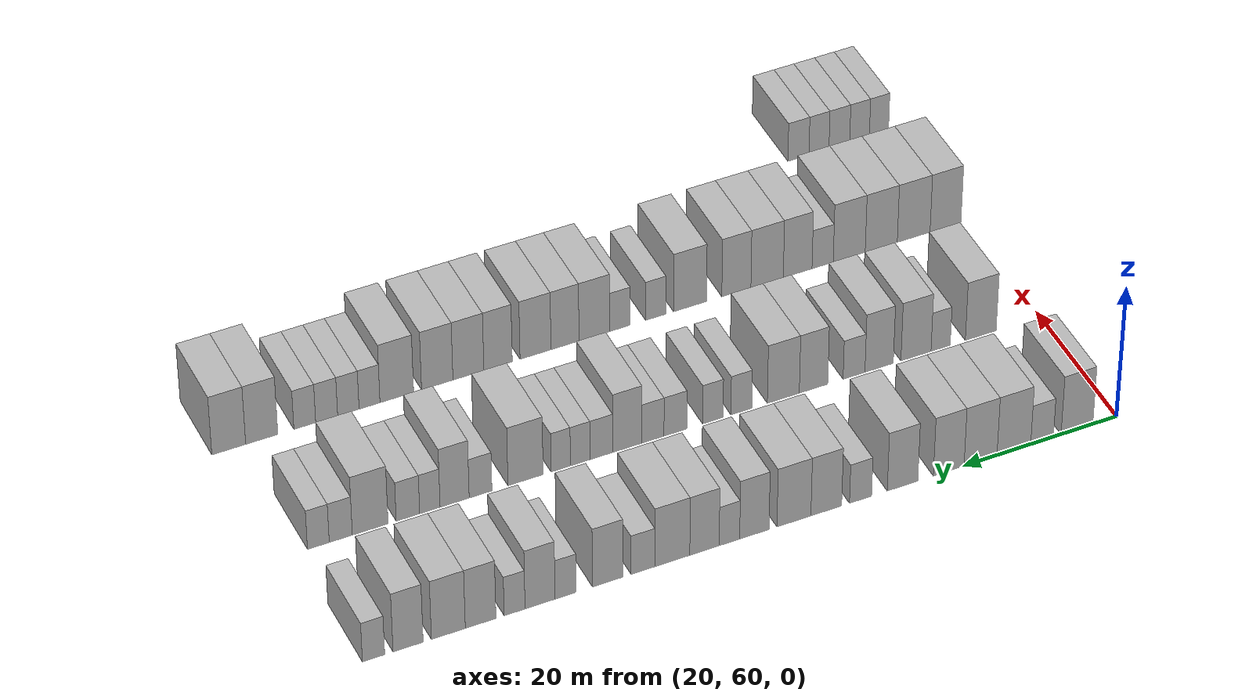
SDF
<sdf version="1.6">
 <world name="default">
  <model name="building_100">
   <static>1</static>
   <pose>25.0000 65.2234 0 0.000000 0.000000 0.000000</pose>
   <link name="link">
    <pose>0 0 4.50 0 0 0</pose>
    <collision name="collision"><geometry><box><size>10.0000 4.1479 9.0000</size></box></geometry></collision>
    <visual name="visual">
     <cast_shadows>0</cast_shadows>
     <geometry><box><size>10.0000 4.1479 9.0000</size></box></geometry>
     <material>
      <script>
       <uri>model://HANNAS_wall/materials/scripts</uri>
       <uri>model://HANNAS_wall/materials/textures</uri>
       <name>vrc/HANNAS_wall</name>
      </script>
     </material>
    </visual>
   </link>
  </model>
  <model name="building_101">
   <static>1</static>
   <pose>25.0000 69.7749 0 0.000000 0.000000 0.000000</pose>
   <link name="link">
    <pose>0 0 3.00 0 0 0</pose>
    <collision name="collision"><geometry><box><size>10.0000 2.9551 6.0000</size></box></geometry></collision>
    <visual name="visual">
     <cast_shadows>0</cast_shadows>
     <geometry><box><size>10.0000 2.9551 6.0000</size></box></geometry>
     <material>
      <script>
       <uri>model://HANNAS_wall/materials/scripts</uri>
       <uri>model://HANNAS_wall/materials/textures</uri>
       <name>vrc/HANNAS_wall</name>
      </script>
     </material>
    </visual>
   </link>
  </model>
  <model name="building_102">
   <static>1</static>
   <pose>25.0000 73.4389 0 0.000000 0.000000 0.000000</pose>
   <link name="link">
    <pose>0 0 4.50 0 0 0</pose>
    <collision name="collision"><geometry><box><size>10.0000 4.3728 9.0000</size></box></geometry></collision>
    <visual name="visual">
     <cast_shadows>0</cast_shadows>
     <geometry><box><size>10.0000 4.3728 9.0000</size></box></geometry>
     <material>
      <script>
       <uri>model://HANNAS_wall/materials/scripts</uri>
       <uri>model://HANNAS_wall/materials/textures</uri>
       <name>vrc/HANNAS_wall</name>
      </script>
     </material>
    </visual>
   </link>
  </model>
  <model name="building_103">
   <static>1</static>
   <pose>25.0000 77.7557 0 0.000000 0.000000 0.000000</pose>
   <link name="link">
    <pose>0 0 4.50 0 0 0</pose>
    <collision name="collision"><geometry><box><size>10.0000 4.2608 9.0000</size></box></geometry></collision>
    <visual name="visual">
     <cast_shadows>0</cast_shadows>
     <geometry><box><size>10.0000 4.2608 9.0000</size></box></geometry>
     <material>
      <script>
       <uri>model://HANNAS_wall/materials/scripts</uri>
       <uri>model://HANNAS_wall/materials/textures</uri>
       <name>vrc/HANNAS_wall</name>
      </script>
     </material>
    </visual>
   </link>
  </model>
  <model name="building_104">
   <static>1</static>
   <pose>25.0000 81.8620 0 0.000000 0.000000 0.000000</pose>
   <link name="link">
    <pose>0 0 4.50 0 0 0</pose>
    <collision name="collision"><geometry><box><size>10.0000 3.9519 9.0000</size></box></geometry></collision>
    <visual name="visual">
     <cast_shadows>0</cast_shadows>
     <geometry><box><size>10.0000 3.9519 9.0000</size></box></geometry>
     <material>
      <script>
       <uri>model://HANNAS_wall/materials/scripts</uri>
       <uri>model://HANNAS_wall/materials/textures</uri>
       <name>vrc/HANNAS_wall</name>
      </script>
     </material>
    </visual>
   </link>
  </model>
  <model name="building_105">
   <static>1</static>
   <pose>25.0000 87.7919 0 0.000000 0.000000 0.000000</pose>
   <link name="link">
    <pose>0 0 4.50 0 0 0</pose>
    <collision name="collision"><geometry><box><size>10.0000 3.9078 9.0000</size></box></geometry></collision>
    <visual name="visual">
     <cast_shadows>0</cast_shadows>
     <geometry><box><size>10.0000 3.9078 9.0000</size></box></geometry>
     <material>
      <script>
       <uri>model://HANNAS_wall/materials/scripts</uri>
       <uri>model://HANNAS_wall/materials/textures</uri>
       <name>vrc/HANNAS_wall</name>
      </script>
     </material>
    </visual>
   </link>
  </model>
  <model name="building_106">
   <static>1</static>
   <pose>25.0000 93.1498 0 0.000000 0.000000 0.000000</pose>
   <link name="link">
    <pose>0 0 3.00 0 0 0</pose>
    <collision name="collision"><geometry><box><size>10.0000 2.8081 6.0000</size></box></geometry></collision>
    <visual name="visual">
     <cast_shadows>0</cast_shadows>
     <geometry><box><size>10.0000 2.8081 6.0000</size></box></geometry>
     <material>
      <script>
       <uri>model://HANNAS_wall/materials/scripts</uri>
       <uri>model://HANNAS_wall/materials/textures</uri>
       <name>vrc/HANNAS_wall</name>
      </script>
     </material>
    </visual>
   </link>
  </model>
  <model name="building_107">
   <static>1</static>
   <pose>25.0000 97.5017 0 0.000000 0.000000 0.000000</pose>
   <link name="link">
    <pose>0 0 4.50 0 0 0</pose>
    <collision name="collision"><geometry><box><size>10.0000 3.8957 9.0000</size></box></geometry></collision>
    <visual name="visual">
     <cast_shadows>0</cast_shadows>
     <geometry><box><size>10.0000 3.8957 9.0000</size></box></geometry>
     <material>
      <script>
       <uri>model://HANNAS_wall/materials/scripts</uri>
       <uri>model://HANNAS_wall/materials/textures</uri>
       <name>vrc/HANNAS_wall</name>
      </script>
     </material>
    </visual>
   </link>
  </model>
  <model name="building_108">
   <static>1</static>
   <pose>25.0000 101.5900 0 0.000000 0.000000 0.000000</pose>
   <link name="link">
    <pose>0 0 4.50 0 0 0</pose>
    <collision name="collision"><geometry><box><size>10.0000 4.2809 9.0000</size></box></geometry></collision>
    <visual name="visual">
     <cast_shadows>0</cast_shadows>
     <geometry><box><size>10.0000 4.2809 9.0000</size></box></geometry>
     <material>
      <script>
       <uri>model://HANNAS_wall/materials/scripts</uri>
       <uri>model://HANNAS_wall/materials/textures</uri>
       <name>vrc/HANNAS_wall</name>
      </script>
     </material>
    </visual>
   </link>
  </model>
  <model name="building_109">
   <static>1</static>
   <pose>25.0000 106.5725 0 0.000000 0.000000 0.000000</pose>
   <link name="link">
    <pose>0 0 4.50 0 0 0</pose>
    <collision name="collision"><geometry><box><size>10.0000 3.6840 9.0000</size></box></geometry></collision>
    <visual name="visual">
     <cast_shadows>0</cast_shadows>
     <geometry><box><size>10.0000 3.6840 9.0000</size></box></geometry>
     <material>
      <script>
       <uri>model://HANNAS_wall/materials/scripts</uri>
       <uri>model://HANNAS_wall/materials/textures</uri>
       <name>vrc/HANNAS_wall</name>
      </script>
     </material>
    </visual>
   </link>
  </model>
  <model name="building_110">
   <static>1</static>
   <pose>25.0000 109.6948 0 0.000000 0.000000 0.000000</pose>
   <link name="link">
    <pose>0 0 3.00 0 0 0</pose>
    <collision name="collision"><geometry><box><size>10.0000 2.5607 6.0000</size></box></geometry></collision>
    <visual name="visual">
     <cast_shadows>0</cast_shadows>
     <geometry><box><size>10.0000 2.5607 6.0000</size></box></geometry>
     <material>
      <script>
       <uri>model://HANNAS_wall/materials/scripts</uri>
       <uri>model://HANNAS_wall/materials/textures</uri>
       <name>vrc/HANNAS_wall</name>
      </script>
     </material>
    </visual>
   </link>
  </model>
  <model name="building_111">
   <static>1</static>
   <pose>25.0000 112.8105 0 0.000000 0.000000 0.000000</pose>
   <link name="link">
    <pose>0 0 4.50 0 0 0</pose>
    <collision name="collision"><geometry><box><size>10.0000 3.6707 9.0000</size></box></geometry></collision>
    <visual name="visual">
     <cast_shadows>0</cast_shadows>
     <geometry><box><size>10.0000 3.6707 9.0000</size></box></geometry>
     <material>
      <script>
       <uri>model://HANNAS_wall/materials/scripts</uri>
       <uri>model://HANNAS_wall/materials/textures</uri>
       <name>vrc/HANNAS_wall</name>
      </script>
     </material>
    </visual>
   </link>
  </model>
  <model name="building_112">
   <static>1</static>
   <pose>25.0000 116.8172 0 0.000000 0.000000 0.000000</pose>
   <link name="link">
    <pose>0 0 4.50 0 0 0</pose>
    <collision name="collision"><geometry><box><size>10.0000 4.3426 9.0000</size></box></geometry></collision>
    <visual name="visual">
     <cast_shadows>0</cast_shadows>
     <geometry><box><size>10.0000 4.3426 9.0000</size></box></geometry>
     <material>
      <script>
       <uri>model://HANNAS_wall/materials/scripts</uri>
       <uri>model://HANNAS_wall/materials/textures</uri>
       <name>vrc/HANNAS_wall</name>
      </script>
     </material>
    </visual>
   </link>
  </model>
  <model name="building_113">
   <static>1</static>
   <pose>25.0000 120.4595 0 0.000000 0.000000 0.000000</pose>
   <link name="link">
    <pose>0 0 3.00 0 0 0</pose>
    <collision name="collision"><geometry><box><size>10.0000 2.9421 6.0000</size></box></geometry></collision>
    <visual name="visual">
     <cast_shadows>0</cast_shadows>
     <geometry><box><size>10.0000 2.9421 6.0000</size></box></geometry>
     <material>
      <script>
       <uri>model://HANNAS_wall/materials/scripts</uri>
       <uri>model://HANNAS_wall/materials/textures</uri>
       <name>vrc/HANNAS_wall</name>
      </script>
     </material>
    </visual>
   </link>
  </model>
  <model name="building_114">
   <static>1</static>
   <pose>25.0000 124.8111 0 0.000000 0.000000 0.000000</pose>
   <link name="link">
    <pose>0 0 4.50 0 0 0</pose>
    <collision name="collision"><geometry><box><size>10.0000 3.7609 9.0000</size></box></geometry></collision>
    <visual name="visual">
     <cast_shadows>0</cast_shadows>
     <geometry><box><size>10.0000 3.7609 9.0000</size></box></geometry>
     <material>
      <script>
       <uri>model://HANNAS_wall/materials/scripts</uri>
       <uri>model://HANNAS_wall/materials/textures</uri>
       <name>vrc/HANNAS_wall</name>
      </script>
     </material>
    </visual>
   </link>
  </model>
  <model name="building_115">
   <static>1</static>
   <pose>25.0000 129.9902 0 0.000000 0.000000 0.000000</pose>
   <link name="link">
    <pose>0 0 3.00 0 0 0</pose>
    <collision name="collision"><geometry><box><size>10.0000 2.5973 6.0000</size></box></geometry></collision>
    <visual name="visual">
     <cast_shadows>0</cast_shadows>
     <geometry><box><size>10.0000 2.5973 6.0000</size></box></geometry>
     <material>
      <script>
       <uri>model://HANNAS_wall/materials/scripts</uri>
       <uri>model://HANNAS_wall/materials/textures</uri>
       <name>vrc/HANNAS_wall</name>
      </script>
     </material>
    </visual>
   </link>
  </model>
  <model name="building_116">
   <static>1</static>
   <pose>25.0000 133.1242 0 0.000000 0.000000 0.000000</pose>
   <link name="link">
    <pose>0 0 4.50 0 0 0</pose>
    <collision name="collision"><geometry><box><size>10.0000 3.6707 9.0000</size></box></geometry></collision>
    <visual name="visual">
     <cast_shadows>0</cast_shadows>
     <geometry><box><size>10.0000 3.6707 9.0000</size></box></geometry>
     <material>
      <script>
       <uri>model://HANNAS_wall/materials/scripts</uri>
       <uri>model://HANNAS_wall/materials/textures</uri>
       <name>vrc/HANNAS_wall</name>
      </script>
     </material>
    </visual>
   </link>
  </model>
  <model name="building_117">
   <static>1</static>
   <pose>25.0000 136.2313 0 0.000000 0.000000 0.000000</pose>
   <link name="link">
    <pose>0 0 3.00 0 0 0</pose>
    <collision name="collision"><geometry><box><size>10.0000 2.5433 6.0000</size></box></geometry></collision>
    <visual name="visual">
     <cast_shadows>0</cast_shadows>
     <geometry><box><size>10.0000 2.5433 6.0000</size></box></geometry>
     <material>
      <script>
       <uri>model://HANNAS_wall/materials/scripts</uri>
       <uri>model://HANNAS_wall/materials/textures</uri>
       <name>vrc/HANNAS_wall</name>
      </script>
     </material>
    </visual>
   </link>
  </model>
  <model name="building_118">
   <static>1</static>
   <pose>25.0000 140.3621 0 0.000000 0.000000 0.000000</pose>
   <link name="link">
    <pose>0 0 4.50 0 0 0</pose>
    <collision name="collision"><geometry><box><size>10.0000 3.7183 9.0000</size></box></geometry></collision>
    <visual name="visual">
     <cast_shadows>0</cast_shadows>
     <geometry><box><size>10.0000 3.7183 9.0000</size></box></geometry>
     <material>
      <script>
       <uri>model://HANNAS_wall/materials/scripts</uri>
       <uri>model://HANNAS_wall/materials/textures</uri>
       <name>vrc/HANNAS_wall</name>
      </script>
     </material>
    </visual>
   </link>
  </model>
  <model name="building_119">
   <static>1</static>
   <pose>25.0000 144.2702 0 0.000000 0.000000 0.000000</pose>
   <link name="link">
    <pose>0 0 4.50 0 0 0</pose>
    <collision name="collision"><geometry><box><size>10.0000 4.0978 9.0000</size></box></geometry></collision>
    <visual name="visual">
     <cast_shadows>0</cast_shadows>
     <geometry><box><size>10.0000 4.0978 9.0000</size></box></geometry>
     <material>
      <script>
       <uri>model://HANNAS_wall/materials/scripts</uri>
       <uri>model://HANNAS_wall/materials/textures</uri>
       <name>vrc/HANNAS_wall</name>
      </script>
     </material>
    </visual>
   </link>
  </model>
  <model name="building_120">
   <static>1</static>
   <pose>25.0000 149.1293 0 0.000000 0.000000 0.000000</pose>
   <link name="link">
    <pose>0 0 4.50 0 0 0</pose>
    <collision name="collision"><geometry><box><size>10.0000 3.6205 9.0000</size></box></geometry></collision>
    <visual name="visual">
     <cast_shadows>0</cast_shadows>
     <geometry><box><size>10.0000 3.6205 9.0000</size></box></geometry>
     <material>
      <script>
       <uri>model://HANNAS_wall/materials/scripts</uri>
       <uri>model://HANNAS_wall/materials/textures</uri>
       <name>vrc/HANNAS_wall</name>
      </script>
     </material>
    </visual>
   </link>
  </model>
  <model name="building_121">
   <static>1</static>
   <pose>25.0000 153.2740 0 0.000000 0.000000 0.000000</pose>
   <link name="link">
    <pose>0 0 3.00 0 0 0</pose>
    <collision name="collision"><geometry><box><size>10.0000 2.6689 6.0000</size></box></geometry></collision>
    <visual name="visual">
     <cast_shadows>0</cast_shadows>
     <geometry><box><size>10.0000 2.6689 6.0000</size></box></geometry>
     <material>
      <script>
       <uri>model://HANNAS_wall/materials/scripts</uri>
       <uri>model://HANNAS_wall/materials/textures</uri>
       <name>vrc/HANNAS_wall</name>
      </script>
     </material>
    </visual>
   </link>
  </model>
  <model name="building_274">
   <static>1</static>
   <pose>44.0000 67.8779 0 0.000000 0.000000 0.000000</pose>
   <link name="link">
    <pose>0 0 4.50 0 0 0</pose>
    <collision name="collision"><geometry><box><size>10.0000 4.0753 9.0000</size></box></geometry></collision>
    <visual name="visual">
     <cast_shadows>0</cast_shadows>
     <geometry><box><size>10.0000 4.0753 9.0000</size></box></geometry>
     <material>
      <script>
       <uri>model://HANNAS_wall/materials/scripts</uri>
       <uri>model://HANNAS_wall/materials/textures</uri>
       <name>vrc/HANNAS_wall</name>
      </script>
     </material>
    </visual>
   </link>
  </model>
  <model name="building_275">
   <static>1</static>
   <pose>44.0000 73.1790 0 0.000000 0.000000 0.000000</pose>
   <link name="link">
    <pose>0 0 3.00 0 0 0</pose>
    <collision name="collision"><geometry><box><size>10.0000 2.5270 6.0000</size></box></geometry></collision>
    <visual name="visual">
     <cast_shadows>0</cast_shadows>
     <geometry><box><size>10.0000 2.5270 6.0000</size></box></geometry>
     <material>
      <script>
       <uri>model://HANNAS_wall/materials/scripts</uri>
       <uri>model://HANNAS_wall/materials/textures</uri>
       <name>vrc/HANNAS_wall</name>
      </script>
     </material>
    </visual>
   </link>
  </model>
  <model name="building_276">
   <static>1</static>
   <pose>44.0000 76.4211 0 0.000000 0.000000 0.000000</pose>
   <link name="link">
    <pose>0 0 4.50 0 0 0</pose>
    <collision name="collision"><geometry><box><size>10.0000 3.9571 9.0000</size></box></geometry></collision>
    <visual name="visual">
     <cast_shadows>0</cast_shadows>
     <geometry><box><size>10.0000 3.9571 9.0000</size></box></geometry>
     <material>
      <script>
       <uri>model://HANNAS_wall/materials/scripts</uri>
       <uri>model://HANNAS_wall/materials/textures</uri>
       <name>vrc/HANNAS_wall</name>
      </script>
     </material>
    </visual>
   </link>
  </model>
  <model name="building_277">
   <static>1</static>
   <pose>44.0000 81.2521 0 0.000000 0.000000 0.000000</pose>
   <link name="link">
    <pose>0 0 4.50 0 0 0</pose>
    <collision name="collision"><geometry><box><size>10.0000 3.7050 9.0000</size></box></geometry></collision>
    <visual name="visual">
     <cast_shadows>0</cast_shadows>
     <geometry><box><size>10.0000 3.7050 9.0000</size></box></geometry>
     <material>
      <script>
       <uri>model://HANNAS_wall/materials/scripts</uri>
       <uri>model://HANNAS_wall/materials/textures</uri>
       <name>vrc/HANNAS_wall</name>
      </script>
     </material>
    </visual>
   </link>
  </model>
  <model name="building_278">
   <static>1</static>
   <pose>44.0000 84.5286 0 0.000000 0.000000 0.000000</pose>
   <link name="link">
    <pose>0 0 3.00 0 0 0</pose>
    <collision name="collision"><geometry><box><size>10.0000 2.8479 6.0000</size></box></geometry></collision>
    <visual name="visual">
     <cast_shadows>0</cast_shadows>
     <geometry><box><size>10.0000 2.8479 6.0000</size></box></geometry>
     <material>
      <script>
       <uri>model://HANNAS_wall/materials/scripts</uri>
       <uri>model://HANNAS_wall/materials/textures</uri>
       <name>vrc/HANNAS_wall</name>
      </script>
     </material>
    </visual>
   </link>
  </model>
  <model name="building_279">
   <static>1</static>
   <pose>44.0000 89.7949 0 0.000000 0.000000 0.000000</pose>
   <link name="link">
    <pose>0 0 4.50 0 0 0</pose>
    <collision name="collision"><geometry><box><size>10.0000 3.6847 9.0000</size></box></geometry></collision>
    <visual name="visual">
     <cast_shadows>0</cast_shadows>
     <geometry><box><size>10.0000 3.6847 9.0000</size></box></geometry>
     <material>
      <script>
       <uri>model://HANNAS_wall/materials/scripts</uri>
       <uri>model://HANNAS_wall/materials/textures</uri>
       <name>vrc/HANNAS_wall</name>
      </script>
     </material>
    </visual>
   </link>
  </model>
  <model name="building_280">
   <static>1</static>
   <pose>44.0000 93.7011 0 0.000000 0.000000 0.000000</pose>
   <link name="link">
    <pose>0 0 4.50 0 0 0</pose>
    <collision name="collision"><geometry><box><size>10.0000 4.1276 9.0000</size></box></geometry></collision>
    <visual name="visual">
     <cast_shadows>0</cast_shadows>
     <geometry><box><size>10.0000 4.1276 9.0000</size></box></geometry>
     <material>
      <script>
       <uri>model://HANNAS_wall/materials/scripts</uri>
       <uri>model://HANNAS_wall/materials/textures</uri>
       <name>vrc/HANNAS_wall</name>
      </script>
     </material>
    </visual>
   </link>
  </model>
  <model name="building_281">
   <static>1</static>
   <pose>44.0000 99.1080 0 0.000000 0.000000 0.000000</pose>
   <link name="link">
    <pose>0 0 3.00 0 0 0</pose>
    <collision name="collision"><geometry><box><size>10.0000 2.6862 6.0000</size></box></geometry></collision>
    <visual name="visual">
     <cast_shadows>0</cast_shadows>
     <geometry><box><size>10.0000 2.6862 6.0000</size></box></geometry>
     <material>
      <script>
       <uri>model://HANNAS_wall/materials/scripts</uri>
       <uri>model://HANNAS_wall/materials/textures</uri>
       <name>vrc/HANNAS_wall</name>
      </script>
     </material>
    </visual>
   </link>
  </model>
  <model name="building_282">
   <static>1</static>
   <pose>44.0000 102.7680 0 0.000000 0.000000 0.000000</pose>
   <link name="link">
    <pose>0 0 3.00 0 0 0</pose>
    <collision name="collision"><geometry><box><size>10.0000 2.6338 6.0000</size></box></geometry></collision>
    <visual name="visual">
     <cast_shadows>0</cast_shadows>
     <geometry><box><size>10.0000 2.6338 6.0000</size></box></geometry>
     <material>
      <script>
       <uri>model://HANNAS_wall/materials/scripts</uri>
       <uri>model://HANNAS_wall/materials/textures</uri>
       <name>vrc/HANNAS_wall</name>
      </script>
     </material>
    </visual>
   </link>
  </model>
  <model name="building_283">
   <static>1</static>
   <pose>44.0000 107.5436 0 0.000000 0.000000 0.000000</pose>
   <link name="link">
    <pose>0 0 3.00 0 0 0</pose>
    <collision name="collision"><geometry><box><size>10.0000 2.9174 6.0000</size></box></geometry></collision>
    <visual name="visual">
     <cast_shadows>0</cast_shadows>
     <geometry><box><size>10.0000 2.9174 6.0000</size></box></geometry>
     <material>
      <script>
       <uri>model://HANNAS_wall/materials/scripts</uri>
       <uri>model://HANNAS_wall/materials/textures</uri>
       <name>vrc/HANNAS_wall</name>
      </script>
     </material>
    </visual>
   </link>
  </model>
  <model name="building_284">
   <static>1</static>
   <pose>44.0000 110.3958 0 0.000000 0.000000 0.000000</pose>
   <link name="link">
    <pose>0 0 3.00 0 0 0</pose>
    <collision name="collision"><geometry><box><size>10.0000 2.7870 6.0000</size></box></geometry></collision>
    <visual name="visual">
     <cast_shadows>0</cast_shadows>
     <geometry><box><size>10.0000 2.7870 6.0000</size></box></geometry>
     <material>
      <script>
       <uri>model://HANNAS_wall/materials/scripts</uri>
       <uri>model://HANNAS_wall/materials/textures</uri>
       <name>vrc/HANNAS_wall</name>
      </script>
     </material>
    </visual>
   </link>
  </model>
  <model name="building_285">
   <static>1</static>
   <pose>44.0000 113.6389 0 0.000000 0.000000 0.000000</pose>
   <link name="link">
    <pose>0 0 4.50 0 0 0</pose>
    <collision name="collision"><geometry><box><size>10.0000 3.6992 9.0000</size></box></geometry></collision>
    <visual name="visual">
     <cast_shadows>0</cast_shadows>
     <geometry><box><size>10.0000 3.6992 9.0000</size></box></geometry>
     <material>
      <script>
       <uri>model://HANNAS_wall/materials/scripts</uri>
       <uri>model://HANNAS_wall/materials/textures</uri>
       <name>vrc/HANNAS_wall</name>
      </script>
     </material>
    </visual>
   </link>
  </model>
  <model name="building_286">
   <static>1</static>
   <pose>44.0000 116.9283 0 0.000000 0.000000 0.000000</pose>
   <link name="link">
    <pose>0 0 3.00 0 0 0</pose>
    <collision name="collision"><geometry><box><size>10.0000 2.8796 6.0000</size></box></geometry></collision>
    <visual name="visual">
     <cast_shadows>0</cast_shadows>
     <geometry><box><size>10.0000 2.8796 6.0000</size></box></geometry>
     <material>
      <script>
       <uri>model://HANNAS_wall/materials/scripts</uri>
       <uri>model://HANNAS_wall/materials/textures</uri>
       <name>vrc/HANNAS_wall</name>
      </script>
     </material>
    </visual>
   </link>
  </model>
  <model name="building_287">
   <static>1</static>
   <pose>44.0000 119.6041 0 0.000000 0.000000 0.000000</pose>
   <link name="link">
    <pose>0 0 3.00 0 0 0</pose>
    <collision name="collision"><geometry><box><size>10.0000 2.4720 6.0000</size></box></geometry></collision>
    <visual name="visual">
     <cast_shadows>0</cast_shadows>
     <geometry><box><size>10.0000 2.4720 6.0000</size></box></geometry>
     <material>
      <script>
       <uri>model://HANNAS_wall/materials/scripts</uri>
       <uri>model://HANNAS_wall/materials/textures</uri>
       <name>vrc/HANNAS_wall</name>
      </script>
     </material>
    </visual>
   </link>
  </model>
  <model name="building_288">
   <static>1</static>
   <pose>44.0000 122.0559 0 0.000000 0.000000 0.000000</pose>
   <link name="link">
    <pose>0 0 3.00 0 0 0</pose>
    <collision name="collision"><geometry><box><size>10.0000 2.4317 6.0000</size></box></geometry></collision>
    <visual name="visual">
     <cast_shadows>0</cast_shadows>
     <geometry><box><size>10.0000 2.4317 6.0000</size></box></geometry>
     <material>
      <script>
       <uri>model://HANNAS_wall/materials/scripts</uri>
       <uri>model://HANNAS_wall/materials/textures</uri>
       <name>vrc/HANNAS_wall</name>
      </script>
     </material>
    </visual>
   </link>
  </model>
  <model name="building_289">
   <static>1</static>
   <pose>44.0000 126.4707 0 0.000000 0.000000 0.000000</pose>
   <link name="link">
    <pose>0 0 4.50 0 0 0</pose>
    <collision name="collision"><geometry><box><size>10.0000 4.3979 9.0000</size></box></geometry></collision>
    <visual name="visual">
     <cast_shadows>0</cast_shadows>
     <geometry><box><size>10.0000 4.3979 9.0000</size></box></geometry>
     <material>
      <script>
       <uri>model://HANNAS_wall/materials/scripts</uri>
       <uri>model://HANNAS_wall/materials/textures</uri>
       <name>vrc/HANNAS_wall</name>
      </script>
     </material>
    </visual>
   </link>
  </model>
  <model name="building_290">
   <static>1</static>
   <pose>44.0000 132.0843 0 0.000000 0.000000 0.000000</pose>
   <link name="link">
    <pose>0 0 3.00 0 0 0</pose>
    <collision name="collision"><geometry><box><size>10.0000 2.8293 6.0000</size></box></geometry></collision>
    <visual name="visual">
     <cast_shadows>0</cast_shadows>
     <geometry><box><size>10.0000 2.8293 6.0000</size></box></geometry>
     <material>
      <script>
       <uri>model://HANNAS_wall/materials/scripts</uri>
       <uri>model://HANNAS_wall/materials/textures</uri>
       <name>vrc/HANNAS_wall</name>
      </script>
     </material>
    </visual>
   </link>
  </model>
  <model name="building_291">
   <static>1</static>
   <pose>44.0000 135.3038 0 0.000000 0.000000 0.000000</pose>
   <link name="link">
    <pose>0 0 4.50 0 0 0</pose>
    <collision name="collision"><geometry><box><size>10.0000 3.6096 9.0000</size></box></geometry></collision>
    <visual name="visual">
     <cast_shadows>0</cast_shadows>
     <geometry><box><size>10.0000 3.6096 9.0000</size></box></geometry>
     <material>
      <script>
       <uri>model://HANNAS_wall/materials/scripts</uri>
       <uri>model://HANNAS_wall/materials/textures</uri>
       <name>vrc/HANNAS_wall</name>
      </script>
     </material>
    </visual>
   </link>
  </model>
  <model name="building_292">
   <static>1</static>
   <pose>44.0000 138.3675 0 0.000000 0.000000 0.000000</pose>
   <link name="link">
    <pose>0 0 3.00 0 0 0</pose>
    <collision name="collision"><geometry><box><size>10.0000 2.5178 6.0000</size></box></geometry></collision>
    <visual name="visual">
     <cast_shadows>0</cast_shadows>
     <geometry><box><size>10.0000 2.5178 6.0000</size></box></geometry>
     <material>
      <script>
       <uri>model://HANNAS_wall/materials/scripts</uri>
       <uri>model://HANNAS_wall/materials/textures</uri>
       <name>vrc/HANNAS_wall</name>
      </script>
     </material>
    </visual>
   </link>
  </model>
  <model name="building_293">
   <static>1</static>
   <pose>44.0000 141.0762 0 0.000000 0.000000 0.000000</pose>
   <link name="link">
    <pose>0 0 3.00 0 0 0</pose>
    <collision name="collision"><geometry><box><size>10.0000 2.8996 6.0000</size></box></geometry></collision>
    <visual name="visual">
     <cast_shadows>0</cast_shadows>
     <geometry><box><size>10.0000 2.8996 6.0000</size></box></geometry>
     <material>
      <script>
       <uri>model://HANNAS_wall/materials/scripts</uri>
       <uri>model://HANNAS_wall/materials/textures</uri>
       <name>vrc/HANNAS_wall</name>
      </script>
     </material>
    </visual>
   </link>
  </model>
  <model name="building_294">
   <static>1</static>
   <pose>44.0000 145.7191 0 0.000000 0.000000 0.000000</pose>
   <link name="link">
    <pose>0 0 4.50 0 0 0</pose>
    <collision name="collision"><geometry><box><size>10.0000 4.3862 9.0000</size></box></geometry></collision>
    <visual name="visual">
     <cast_shadows>0</cast_shadows>
     <geometry><box><size>10.0000 4.3862 9.0000</size></box></geometry>
     <material>
      <script>
       <uri>model://HANNAS_wall/materials/scripts</uri>
       <uri>model://HANNAS_wall/materials/textures</uri>
       <name>vrc/HANNAS_wall</name>
      </script>
     </material>
    </visual>
   </link>
  </model>
  <model name="building_295">
   <static>1</static>
   <pose>44.0000 149.3250 0 0.000000 0.000000 0.000000</pose>
   <link name="link">
    <pose>0 0 3.00 0 0 0</pose>
    <collision name="collision"><geometry><box><size>10.0000 2.8255 6.0000</size></box></geometry></collision>
    <visual name="visual">
     <cast_shadows>0</cast_shadows>
     <geometry><box><size>10.0000 2.8255 6.0000</size></box></geometry>
     <material>
      <script>
       <uri>model://HANNAS_wall/materials/scripts</uri>
       <uri>model://HANNAS_wall/materials/textures</uri>
       <name>vrc/HANNAS_wall</name>
      </script>
     </material>
    </visual>
   </link>
  </model>
  <model name="building_296">
   <static>1</static>
   <pose>44.0000 152.0658 0 0.000000 0.000000 0.000000</pose>
   <link name="link">
    <pose>0 0 3.00 0 0 0</pose>
    <collision name="collision"><geometry><box><size>10.0000 2.6561 6.0000</size></box></geometry></collision>
    <visual name="visual">
     <cast_shadows>0</cast_shadows>
     <geometry><box><size>10.0000 2.6561 6.0000</size></box></geometry>
     <material>
      <script>
       <uri>model://HANNAS_wall/materials/scripts</uri>
       <uri>model://HANNAS_wall/materials/textures</uri>
       <name>vrc/HANNAS_wall</name>
      </script>
     </material>
    </visual>
   </link>
  </model>
  <model name="building_447">
   <static>1</static>
   <pose>63.0000 62.7924 0 0.000000 0.000000 0.000000</pose>
   <link name="link">
    <pose>0 0 4.50 0 0 0</pose>
    <collision name="collision"><geometry><box><size>10.0000 4.1643 9.0000</size></box></geometry></collision>
    <visual name="visual">
     <cast_shadows>0</cast_shadows>
     <geometry><box><size>10.0000 4.1643 9.0000</size></box></geometry>
     <material>
      <script>
       <uri>model://HANNAS_wall/materials/scripts</uri>
       <uri>model://HANNAS_wall/materials/textures</uri>
       <name>vrc/HANNAS_wall</name>
      </script>
     </material>
    </visual>
   </link>
  </model>
  <model name="building_448">
   <static>1</static>
   <pose>63.0000 67.0804 0 0.000000 0.000000 0.000000</pose>
   <link name="link">
    <pose>0 0 4.50 0 0 0</pose>
    <collision name="collision"><geometry><box><size>10.0000 4.4115 9.0000</size></box></geometry></collision>
    <visual name="visual">
     <cast_shadows>0</cast_shadows>
     <geometry><box><size>10.0000 4.4115 9.0000</size></box></geometry>
     <material>
      <script>
       <uri>model://HANNAS_wall/materials/scripts</uri>
       <uri>model://HANNAS_wall/materials/textures</uri>
       <name>vrc/HANNAS_wall</name>
      </script>
     </material>
    </visual>
   </link>
  </model>
  <model name="building_449">
   <static>1</static>
   <pose>63.0000 71.4343 0 0.000000 0.000000 0.000000</pose>
   <link name="link">
    <pose>0 0 4.50 0 0 0</pose>
    <collision name="collision"><geometry><box><size>10.0000 4.2965 9.0000</size></box></geometry></collision>
    <visual name="visual">
     <cast_shadows>0</cast_shadows>
     <geometry><box><size>10.0000 4.2965 9.0000</size></box></geometry>
     <material>
      <script>
       <uri>model://HANNAS_wall/materials/scripts</uri>
       <uri>model://HANNAS_wall/materials/textures</uri>
       <name>vrc/HANNAS_wall</name>
      </script>
     </material>
    </visual>
   </link>
  </model>
  <model name="building_450">
   <static>1</static>
   <pose>63.0000 75.7176 0 0.000000 0.000000 0.000000</pose>
   <link name="link">
    <pose>0 0 4.50 0 0 0</pose>
    <collision name="collision"><geometry><box><size>10.0000 4.2700 9.0000</size></box></geometry></collision>
    <visual name="visual">
     <cast_shadows>0</cast_shadows>
     <geometry><box><size>10.0000 4.2700 9.0000</size></box></geometry>
     <material>
      <script>
       <uri>model://HANNAS_wall/materials/scripts</uri>
       <uri>model://HANNAS_wall/materials/textures</uri>
       <name>vrc/HANNAS_wall</name>
      </script>
     </material>
    </visual>
   </link>
  </model>
  <model name="building_451">
   <static>1</static>
   <pose>63.0000 79.2625 0 0.000000 0.000000 0.000000</pose>
   <link name="link">
    <pose>0 0 3.00 0 0 0</pose>
    <collision name="collision"><geometry><box><size>10.0000 2.8198 6.0000</size></box></geometry></collision>
    <visual name="visual">
     <cast_shadows>0</cast_shadows>
     <geometry><box><size>10.0000 2.8198 6.0000</size></box></geometry>
     <material>
      <script>
       <uri>model://HANNAS_wall/materials/scripts</uri>
       <uri>model://HANNAS_wall/materials/textures</uri>
       <name>vrc/HANNAS_wall</name>
      </script>
     </material>
    </visual>
   </link>
  </model>
  <model name="building_452">
   <static>1</static>
   <pose>63.0000 82.5762 0 0.000000 0.000000 0.000000</pose>
   <link name="link">
    <pose>0 0 4.50 0 0 0</pose>
    <collision name="collision"><geometry><box><size>10.0000 3.8078 9.0000</size></box></geometry></collision>
    <visual name="visual">
     <cast_shadows>0</cast_shadows>
     <geometry><box><size>10.0000 3.8078 9.0000</size></box></geometry>
     <material>
      <script>
       <uri>model://HANNAS_wall/materials/scripts</uri>
       <uri>model://HANNAS_wall/materials/textures</uri>
       <name>vrc/HANNAS_wall</name>
      </script>
     </material>
    </visual>
   </link>
  </model>
  <model name="building_453">
   <static>1</static>
   <pose>63.0000 86.6181 0 0.000000 0.000000 0.000000</pose>
   <link name="link">
    <pose>0 0 4.50 0 0 0</pose>
    <collision name="collision"><geometry><box><size>10.0000 4.2760 9.0000</size></box></geometry></collision>
    <visual name="visual">
     <cast_shadows>0</cast_shadows>
     <geometry><box><size>10.0000 4.2760 9.0000</size></box></geometry>
     <material>
      <script>
       <uri>model://HANNAS_wall/materials/scripts</uri>
       <uri>model://HANNAS_wall/materials/textures</uri>
       <name>vrc/HANNAS_wall</name>
      </script>
     </material>
    </visual>
   </link>
  </model>
  <model name="building_454">
   <static>1</static>
   <pose>63.0000 90.6693 0 0.000000 0.000000 0.000000</pose>
   <link name="link">
    <pose>0 0 4.50 0 0 0</pose>
    <collision name="collision"><geometry><box><size>10.0000 3.8262 9.0000</size></box></geometry></collision>
    <visual name="visual">
     <cast_shadows>0</cast_shadows>
     <geometry><box><size>10.0000 3.8262 9.0000</size></box></geometry>
     <material>
      <script>
       <uri>model://HANNAS_wall/materials/scripts</uri>
       <uri>model://HANNAS_wall/materials/textures</uri>
       <name>vrc/HANNAS_wall</name>
      </script>
     </material>
    </visual>
   </link>
  </model>
  <model name="building_455">
   <static>1</static>
   <pose>63.0000 96.7452 0 0.000000 0.000000 0.000000</pose>
   <link name="link">
    <pose>0 0 4.50 0 0 0</pose>
    <collision name="collision"><geometry><box><size>10.0000 4.3257 9.0000</size></box></geometry></collision>
    <visual name="visual">
     <cast_shadows>0</cast_shadows>
     <geometry><box><size>10.0000 4.3257 9.0000</size></box></geometry>
     <material>
      <script>
       <uri>model://HANNAS_wall/materials/scripts</uri>
       <uri>model://HANNAS_wall/materials/textures</uri>
       <name>vrc/HANNAS_wall</name>
      </script>
     </material>
    </visual>
   </link>
  </model>
  <model name="building_456">
   <static>1</static>
   <pose>63.0000 101.2285 0 0.000000 0.000000 0.000000</pose>
   <link name="link">
    <pose>0 0 3.00 0 0 0</pose>
    <collision name="collision"><geometry><box><size>10.0000 2.6409 6.0000</size></box></geometry></collision>
    <visual name="visual">
     <cast_shadows>0</cast_shadows>
     <geometry><box><size>10.0000 2.6409 6.0000</size></box></geometry>
     <material>
      <script>
       <uri>model://HANNAS_wall/materials/scripts</uri>
       <uri>model://HANNAS_wall/materials/textures</uri>
       <name>vrc/HANNAS_wall</name>
      </script>
     </material>
    </visual>
   </link>
  </model>
  <model name="building_457">
   <static>1</static>
   <pose>63.0000 105.8781 0 0.000000 0.000000 0.000000</pose>
   <link name="link">
    <pose>0 0 3.00 0 0 0</pose>
    <collision name="collision"><geometry><box><size>10.0000 2.6585 6.0000</size></box></geometry></collision>
    <visual name="visual">
     <cast_shadows>0</cast_shadows>
     <geometry><box><size>10.0000 2.6585 6.0000</size></box></geometry>
     <material>
      <script>
       <uri>model://HANNAS_wall/materials/scripts</uri>
       <uri>model://HANNAS_wall/materials/textures</uri>
       <name>vrc/HANNAS_wall</name>
      </script>
     </material>
    </visual>
   </link>
  </model>
  <model name="building_458">
   <static>1</static>
   <pose>63.0000 109.1891 0 0.000000 0.000000 0.000000</pose>
   <link name="link">
    <pose>0 0 4.50 0 0 0</pose>
    <collision name="collision"><geometry><box><size>10.0000 3.9635 9.0000</size></box></geometry></collision>
    <visual name="visual">
     <cast_shadows>0</cast_shadows>
     <geometry><box><size>10.0000 3.9635 9.0000</size></box></geometry>
     <material>
      <script>
       <uri>model://HANNAS_wall/materials/scripts</uri>
       <uri>model://HANNAS_wall/materials/textures</uri>
       <name>vrc/HANNAS_wall</name>
      </script>
     </material>
    </visual>
   </link>
  </model>
  <model name="building_459">
   <static>1</static>
   <pose>63.0000 112.9775 0 0.000000 0.000000 0.000000</pose>
   <link name="link">
    <pose>0 0 4.50 0 0 0</pose>
    <collision name="collision"><geometry><box><size>10.0000 3.6133 9.0000</size></box></geometry></collision>
    <visual name="visual">
     <cast_shadows>0</cast_shadows>
     <geometry><box><size>10.0000 3.6133 9.0000</size></box></geometry>
     <material>
      <script>
       <uri>model://HANNAS_wall/materials/scripts</uri>
       <uri>model://HANNAS_wall/materials/textures</uri>
       <name>vrc/HANNAS_wall</name>
      </script>
     </material>
    </visual>
   </link>
  </model>
  <model name="building_460">
   <static>1</static>
   <pose>63.0000 116.7687 0 0.000000 0.000000 0.000000</pose>
   <link name="link">
    <pose>0 0 4.50 0 0 0</pose>
    <collision name="collision"><geometry><box><size>10.0000 3.9691 9.0000</size></box></geometry></collision>
    <visual name="visual">
     <cast_shadows>0</cast_shadows>
     <geometry><box><size>10.0000 3.9691 9.0000</size></box></geometry>
     <material>
      <script>
       <uri>model://HANNAS_wall/materials/scripts</uri>
       <uri>model://HANNAS_wall/materials/textures</uri>
       <name>vrc/HANNAS_wall</name>
      </script>
     </material>
    </visual>
   </link>
  </model>
  <model name="building_461">
   <static>1</static>
   <pose>63.0000 121.5638 0 0.000000 0.000000 0.000000</pose>
   <link name="link">
    <pose>0 0 4.50 0 0 0</pose>
    <collision name="collision"><geometry><box><size>10.0000 3.6211 9.0000</size></box></geometry></collision>
    <visual name="visual">
     <cast_shadows>0</cast_shadows>
     <geometry><box><size>10.0000 3.6211 9.0000</size></box></geometry>
     <material>
      <script>
       <uri>model://HANNAS_wall/materials/scripts</uri>
       <uri>model://HANNAS_wall/materials/textures</uri>
       <name>vrc/HANNAS_wall</name>
      </script>
     </material>
    </visual>
   </link>
  </model>
  <model name="building_462">
   <static>1</static>
   <pose>63.0000 125.3427 0 0.000000 0.000000 0.000000</pose>
   <link name="link">
    <pose>0 0 4.50 0 0 0</pose>
    <collision name="collision"><geometry><box><size>10.0000 3.9367 9.0000</size></box></geometry></collision>
    <visual name="visual">
     <cast_shadows>0</cast_shadows>
     <geometry><box><size>10.0000 3.9367 9.0000</size></box></geometry>
     <material>
      <script>
       <uri>model://HANNAS_wall/materials/scripts</uri>
       <uri>model://HANNAS_wall/materials/textures</uri>
       <name>vrc/HANNAS_wall</name>
      </script>
     </material>
    </visual>
   </link>
  </model>
  <model name="building_463">
   <static>1</static>
   <pose>63.0000 129.3031 0 0.000000 0.000000 0.000000</pose>
   <link name="link">
    <pose>0 0 4.50 0 0 0</pose>
    <collision name="collision"><geometry><box><size>10.0000 3.9839 9.0000</size></box></geometry></collision>
    <visual name="visual">
     <cast_shadows>0</cast_shadows>
     <geometry><box><size>10.0000 3.9839 9.0000</size></box></geometry>
     <material>
      <script>
       <uri>model://HANNAS_wall/materials/scripts</uri>
       <uri>model://HANNAS_wall/materials/textures</uri>
       <name>vrc/HANNAS_wall</name>
      </script>
     </material>
    </visual>
   </link>
  </model>
  <model name="building_464">
   <static>1</static>
   <pose>63.0000 134.4173 0 0.000000 0.000000 0.000000</pose>
   <link name="link">
    <pose>0 0 4.50 0 0 0</pose>
    <collision name="collision"><geometry><box><size>10.0000 4.2446 9.0000</size></box></geometry></collision>
    <visual name="visual">
     <cast_shadows>0</cast_shadows>
     <geometry><box><size>10.0000 4.2446 9.0000</size></box></geometry>
     <material>
      <script>
       <uri>model://HANNAS_wall/materials/scripts</uri>
       <uri>model://HANNAS_wall/materials/textures</uri>
       <name>vrc/HANNAS_wall</name>
      </script>
     </material>
    </visual>
   </link>
  </model>
  <model name="building_465">
   <static>1</static>
   <pose>63.0000 137.8543 0 0.000000 0.000000 0.000000</pose>
   <link name="link">
    <pose>0 0 3.00 0 0 0</pose>
    <collision name="collision"><geometry><box><size>10.0000 2.6292 6.0000</size></box></geometry></collision>
    <visual name="visual">
     <cast_shadows>0</cast_shadows>
     <geometry><box><size>10.0000 2.6292 6.0000</size></box></geometry>
     <material>
      <script>
       <uri>model://HANNAS_wall/materials/scripts</uri>
       <uri>model://HANNAS_wall/materials/textures</uri>
       <name>vrc/HANNAS_wall</name>
      </script>
     </material>
    </visual>
   </link>
  </model>
  <model name="building_466">
   <static>1</static>
   <pose>63.0000 140.5112 0 0.000000 0.000000 0.000000</pose>
   <link name="link">
    <pose>0 0 3.00 0 0 0</pose>
    <collision name="collision"><geometry><box><size>10.0000 2.6846 6.0000</size></box></geometry></collision>
    <visual name="visual">
     <cast_shadows>0</cast_shadows>
     <geometry><box><size>10.0000 2.6846 6.0000</size></box></geometry>
     <material>
      <script>
       <uri>model://HANNAS_wall/materials/scripts</uri>
       <uri>model://HANNAS_wall/materials/textures</uri>
       <name>vrc/HANNAS_wall</name>
      </script>
     </material>
    </visual>
   </link>
  </model>
  <model name="building_467">
   <static>1</static>
   <pose>63.0000 143.2261 0 0.000000 0.000000 0.000000</pose>
   <link name="link">
    <pose>0 0 3.00 0 0 0</pose>
    <collision name="collision"><geometry><box><size>10.0000 2.7452 6.0000</size></box></geometry></collision>
    <visual name="visual">
     <cast_shadows>0</cast_shadows>
     <geometry><box><size>10.0000 2.7452 6.0000</size></box></geometry>
     <material>
      <script>
       <uri>model://HANNAS_wall/materials/scripts</uri>
       <uri>model://HANNAS_wall/materials/textures</uri>
       <name>vrc/HANNAS_wall</name>
      </script>
     </material>
    </visual>
   </link>
  </model>
  <model name="building_468">
   <static>1</static>
   <pose>63.0000 145.9582 0 0.000000 0.000000 0.000000</pose>
   <link name="link">
    <pose>0 0 3.00 0 0 0</pose>
    <collision name="collision"><geometry><box><size>10.0000 2.7189 6.0000</size></box></geometry></collision>
    <visual name="visual">
     <cast_shadows>0</cast_shadows>
     <geometry><box><size>10.0000 2.7189 6.0000</size></box></geometry>
     <material>
      <script>
       <uri>model://HANNAS_wall/materials/scripts</uri>
       <uri>model://HANNAS_wall/materials/textures</uri>
       <name>vrc/HANNAS_wall</name>
      </script>
     </material>
    </visual>
   </link>
  </model>
  <model name="building_469">
   <static>1</static>
   <pose>63.0000 151.3119 0 0.000000 0.000000 0.000000</pose>
   <link name="link">
    <pose>0 0 4.50 0 0 0</pose>
    <collision name="collision"><geometry><box><size>10.0000 3.9885 9.0000</size></box></geometry></collision>
    <visual name="visual">
     <cast_shadows>0</cast_shadows>
     <geometry><box><size>10.0000 3.9885 9.0000</size></box></geometry>
     <material>
      <script>
       <uri>model://HANNAS_wall/materials/scripts</uri>
       <uri>model://HANNAS_wall/materials/textures</uri>
       <name>vrc/HANNAS_wall</name>
      </script>
     </material>
    </visual>
   </link>
  </model>
  <model name="building_470">
   <static>1</static>
   <pose>63.0000 155.3987 0 0.000000 0.000000 0.000000</pose>
   <link name="link">
    <pose>0 0 4.50 0 0 0</pose>
    <collision name="collision"><geometry><box><size>10.0000 4.1851 9.0000</size></box></geometry></collision>
    <visual name="visual">
     <cast_shadows>0</cast_shadows>
     <geometry><box><size>10.0000 4.1851 9.0000</size></box></geometry>
     <material>
      <script>
       <uri>model://HANNAS_wall/materials/scripts</uri>
       <uri>model://HANNAS_wall/materials/textures</uri>
       <name>vrc/HANNAS_wall</name>
      </script>
     </material>
    </visual>
   </link>
  </model>
  <model name="building_615">
   <static>1</static>
   <pose>82.0000 62.2163 0 0.000000 0.000000 0.000000</pose>
   <link name="link">
    <pose>0 0 3.00 0 0 0</pose>
    <collision name="collision"><geometry><box><size>10.0000 2.6180 6.0000</size></box></geometry></collision>
    <visual name="visual">
     <cast_shadows>0</cast_shadows>
     <geometry><box><size>10.0000 2.6180 6.0000</size></box></geometry>
     <material>
      <script>
       <uri>model://HANNAS_wall/materials/scripts</uri>
       <uri>model://HANNAS_wall/materials/textures</uri>
       <name>vrc/HANNAS_wall</name>
      </script>
     </material>
    </visual>
   </link>
  </model>
  <model name="building_616">
   <static>1</static>
   <pose>82.0000 64.8734 0 0.000000 0.000000 0.000000</pose>
   <link name="link">
    <pose>0 0 3.00 0 0 0</pose>
    <collision name="collision"><geometry><box><size>10.0000 2.6961 6.0000</size></box></geometry></collision>
    <visual name="visual">
     <cast_shadows>0</cast_shadows>
     <geometry><box><size>10.0000 2.6961 6.0000</size></box></geometry>
     <material>
      <script>
       <uri>model://HANNAS_wall/materials/scripts</uri>
       <uri>model://HANNAS_wall/materials/textures</uri>
       <name>vrc/HANNAS_wall</name>
      </script>
     </material>
    </visual>
   </link>
  </model>
  <model name="building_617">
   <static>1</static>
   <pose>82.0000 67.6340 0 0.000000 0.000000 0.000000</pose>
   <link name="link">
    <pose>0 0 3.00 0 0 0</pose>
    <collision name="collision"><geometry><box><size>10.0000 2.8252 6.0000</size></box></geometry></collision>
    <visual name="visual">
     <cast_shadows>0</cast_shadows>
     <geometry><box><size>10.0000 2.8252 6.0000</size></box></geometry>
     <material>
      <script>
       <uri>model://HANNAS_wall/materials/scripts</uri>
       <uri>model://HANNAS_wall/materials/textures</uri>
       <name>vrc/HANNAS_wall</name>
      </script>
     </material>
    </visual>
   </link>
  </model>
  <model name="building_618">
   <static>1</static>
   <pose>82.0000 70.4066 0 0.000000 0.000000 0.000000</pose>
   <link name="link">
    <pose>0 0 3.00 0 0 0</pose>
    <collision name="collision"><geometry><box><size>10.0000 2.7199 6.0000</size></box></geometry></collision>
    <visual name="visual">
     <cast_shadows>0</cast_shadows>
     <geometry><box><size>10.0000 2.7199 6.0000</size></box></geometry>
     <material>
      <script>
       <uri>model://HANNAS_wall/materials/scripts</uri>
       <uri>model://HANNAS_wall/materials/textures</uri>
       <name>vrc/HANNAS_wall</name>
      </script>
     </material>
    </visual>
   </link>
  </model>
  <model name="building_619">
   <static>1</static>
   <pose>82.0000 73.1974 0 0.000000 0.000000 0.000000</pose>
   <link name="link">
    <pose>0 0 3.00 0 0 0</pose>
    <collision name="collision"><geometry><box><size>10.0000 2.8617 6.0000</size></box></geometry></collision>
    <visual name="visual">
     <cast_shadows>0</cast_shadows>
     <geometry><box><size>10.0000 2.8617 6.0000</size></box></geometry>
     <material>
      <script>
       <uri>model://HANNAS_wall/materials/scripts</uri>
       <uri>model://HANNAS_wall/materials/textures</uri>
       <name>vrc/HANNAS_wall</name>
      </script>
     </material>
    </visual>
   </link>
  </model>
 </world>
</sdf>
